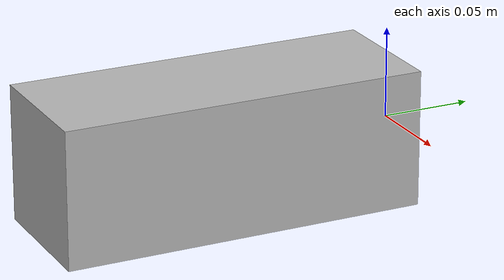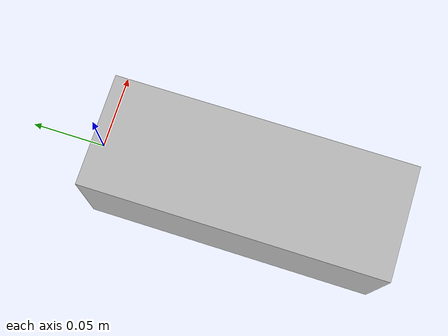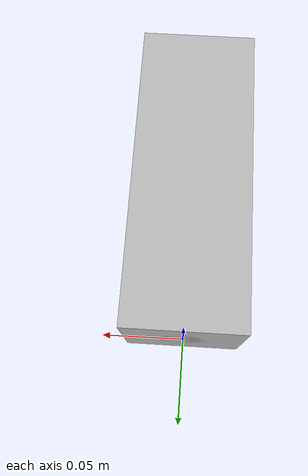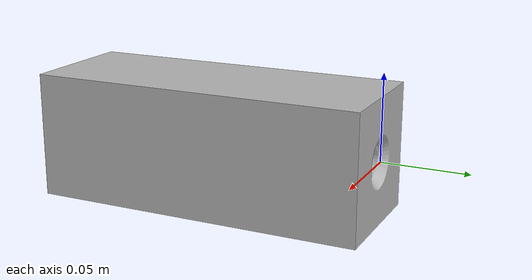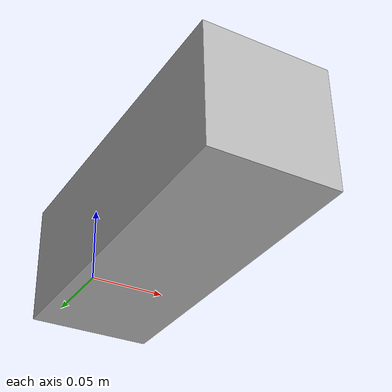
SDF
<?xml version='1.0'?>
<sdf version='1.6'>
  <model name='high_circ_hole'>
    <static>true</static>

    <link name="link">
      <visual name="visual">
        <geometry>
          <mesh>
            <uri>model://high_circ_hole/meshes/high_circ_hole.stl</uri>
          </mesh>
        </geometry>
      </visual>

      <collision name="collision">
        <geometry>
          <mesh>
            <uri>model://high_circ_hole/meshes/high_circ_hole.stl</uri>
          </mesh>
        </geometry>
      </collision>
    </link>
  </model>
</sdf>
